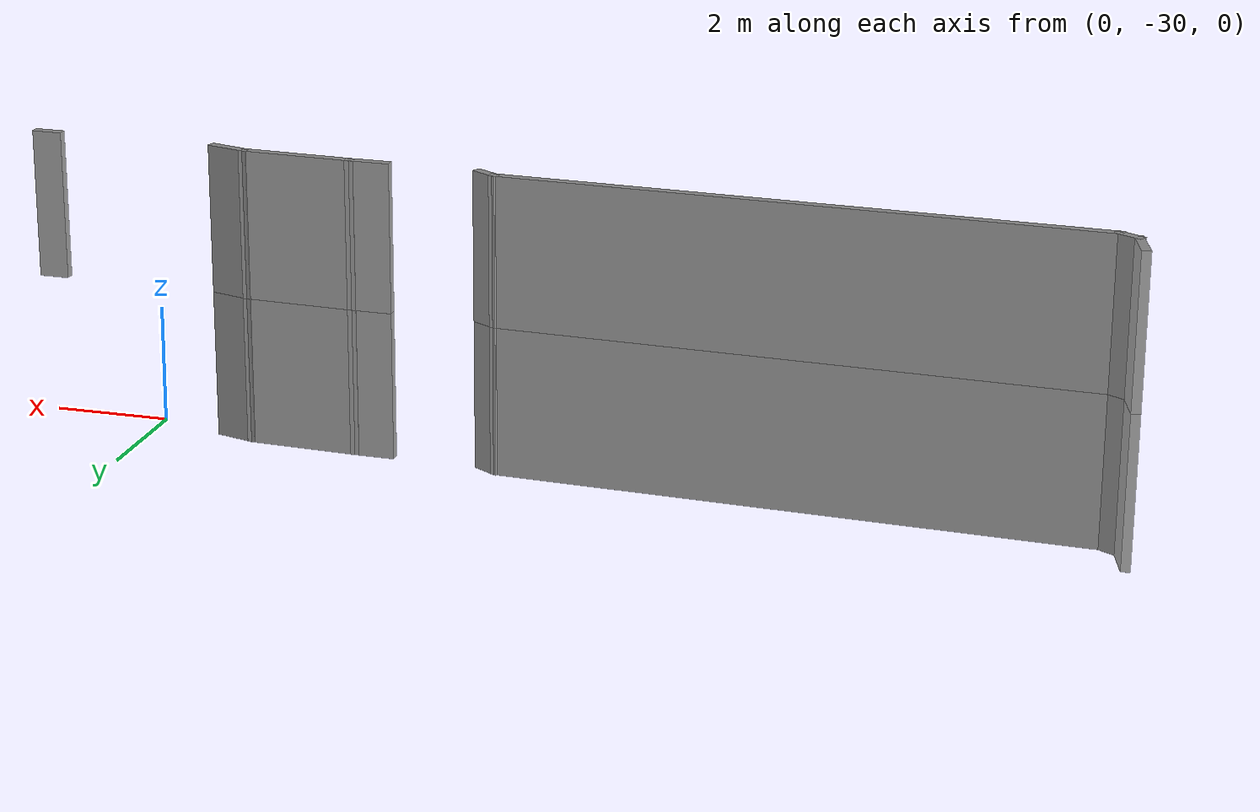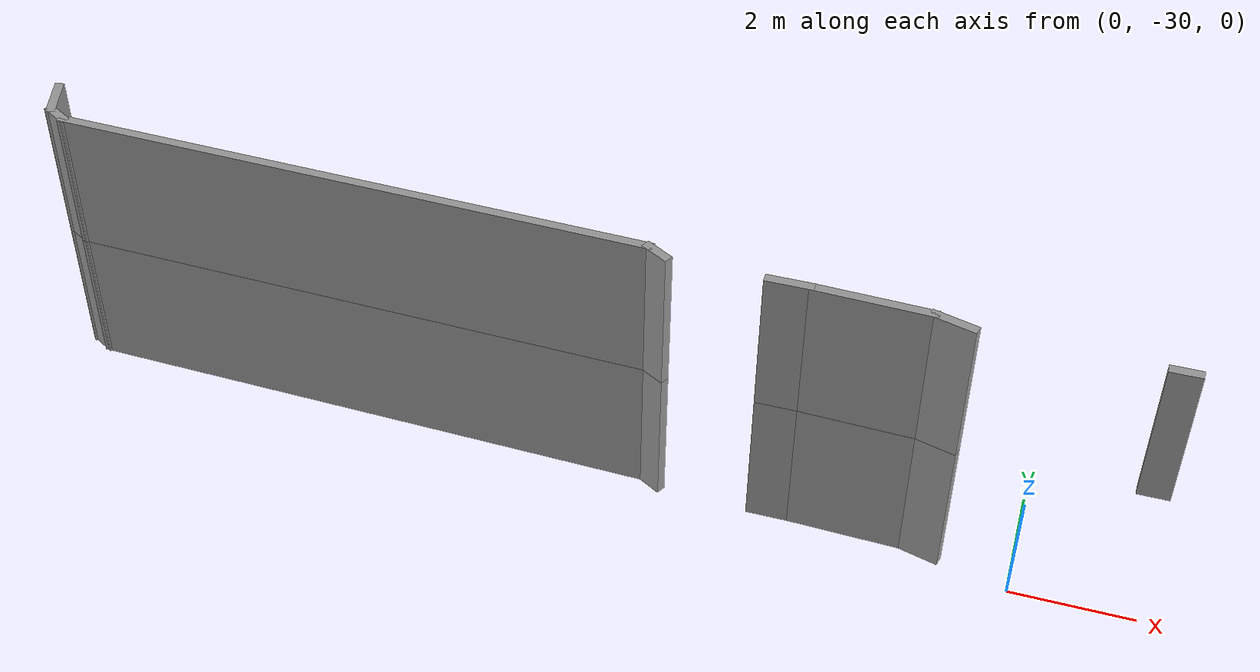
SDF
<sdf version="1.7">
 <model name="EnvDC01">
  <link name="Wall_130">
   <pose>-16.1981 -28.4923 0 0 -0 1.8326</pose>
   <visual name="Wall_130_Visual">
    <pose>0 0 1.25 0 -0 0</pose>
    <geometry><box><size>0.75 0.15 2.5</size></box></geometry>
    <material>
     <script><uri>file://media/materials/scripts/gazebo.material</uri><name>Gazebo/Grey</name></script>
     <ambient>1 1 1 1</ambient>
     <shader type="pixel"/>
    </material>
    <meta><layer>0</layer></meta>
   </visual>
   <collision name="Wall_130_Collision">
    <pose>0 0 1.25 0 -0 0</pose>
    <geometry><box><size>0.75 0.15 2.5</size></box></geometry>
    <surface>
     <friction>
      <ode><mu>1</mu><mu2>1</mu2><fdir1>0 0 0</fdir1><slip1>0</slip1><slip2>0</slip2></ode>
      <torsional>
       <coefficient>1</coefficient>
       <patch_radius>0</patch_radius>
       <surface_radius>0</surface_radius>
       <use_patch_radius>1</use_patch_radius>
       <ode><slip>0</slip></ode>
      </torsional>
     </friction>
     <bounce><restitution_coefficient>0</restitution_coefficient><threshold>1e+06</threshold></bounce>
     <contact>
      <collide_without_contact>0</collide_without_contact>
      <collide_without_contact_bitmask>1</collide_without_contact_bitmask>
      <collide_bitmask>1</collide_bitmask>
      <ode>
       <soft_cfm>0</soft_cfm>
       <soft_erp>0.2</soft_erp>
       <kp>1e+13</kp>
       <kd>1</kd>
       <max_vel>0.01</max_vel>
       <min_depth>0</min_depth>
      </ode>
      <bullet>
       <split_impulse>1</split_impulse>
       <split_impulse_penetration_threshold>-0.01</split_impulse_penetration_threshold>
       <soft_cfm>0</soft_cfm>
       <soft_erp>0.2</soft_erp>
       <kp>1e+13</kp>
       <kd>1</kd>
      </bullet>
     </contact>
    </surface>
   </collision>
  </link>
  <link name="Wall_239">
   <pose>-1.48461 -29.6062 0 0 -0 2.87979</pose>
   <visual name="Wall_239_Visual">
    <pose>0 0 1.25 0 -0 0</pose>
    <geometry><box><size>0.75 0.15 2.5</size></box></geometry>
    <material>
     <script><uri>file://media/materials/scripts/gazebo.material</uri><name>Gazebo/Grey</name></script>
     <ambient>1 1 1 1</ambient>
     <shader type="pixel"/>
    </material>
    <meta><layer>0</layer></meta>
   </visual>
   <collision name="Wall_239_Collision">
    <pose>0 0 1.25 0 -0 0</pose>
    <geometry><box><size>0.75 0.15 2.5</size></box></geometry>
    <surface>
     <friction>
      <ode><mu>1</mu><mu2>1</mu2><fdir1>0 0 0</fdir1><slip1>0</slip1><slip2>0</slip2></ode>
      <torsional>
       <coefficient>1</coefficient>
       <patch_radius>0</patch_radius>
       <surface_radius>0</surface_radius>
       <use_patch_radius>1</use_patch_radius>
       <ode><slip>0</slip></ode>
      </torsional>
     </friction>
     <bounce><restitution_coefficient>0</restitution_coefficient><threshold>1e+06</threshold></bounce>
     <contact>
      <collide_without_contact>0</collide_without_contact>
      <collide_without_contact_bitmask>1</collide_without_contact_bitmask>
      <collide_bitmask>1</collide_bitmask>
      <ode>
       <soft_cfm>0</soft_cfm>
       <soft_erp>0.2</soft_erp>
       <kp>1e+13</kp>
       <kd>1</kd>
       <max_vel>0.01</max_vel>
       <min_depth>0</min_depth>
      </ode>
      <bullet>
       <split_impulse>1</split_impulse>
       <split_impulse_penetration_threshold>-0.01</split_impulse_penetration_threshold>
       <soft_cfm>0</soft_cfm>
       <soft_erp>0.2</soft_erp>
       <kp>1e+13</kp>
       <kd>1</kd>
      </bullet>
     </contact>
    </surface>
   </collision>
  </link>
  <link name="Wall_240">
   <pose>-2.69513 -29.4962 0 0 -0 3.10647</pose>
   <visual name="Wall_240_Visual">
    <pose>0 0 1.25 0 -0 0</pose>
    <geometry><box><size>1.99262 0.15 2.5</size></box></geometry>
    <material>
     <script><uri>file://media/materials/scripts/gazebo.material</uri><name>Gazebo/Grey</name></script>
     <ambient>1 1 1 1</ambient>
     <shader type="pixel"/>
    </material>
    <meta><layer>0</layer></meta>
   </visual>
   <collision name="Wall_240_Collision">
    <pose>0 0 1.25 0 -0 0</pose>
    <geometry><box><size>1.99262 0.15 2.5</size></box></geometry>
    <surface>
     <friction>
      <ode><mu>1</mu><mu2>1</mu2><fdir1>0 0 0</fdir1><slip1>0</slip1><slip2>0</slip2></ode>
      <torsional>
       <coefficient>1</coefficient>
       <patch_radius>0</patch_radius>
       <surface_radius>0</surface_radius>
       <use_patch_radius>1</use_patch_radius>
       <ode><slip>0</slip></ode>
      </torsional>
     </friction>
     <bounce><restitution_coefficient>0</restitution_coefficient><threshold>1e+06</threshold></bounce>
     <contact>
      <collide_without_contact>0</collide_without_contact>
      <collide_without_contact_bitmask>1</collide_without_contact_bitmask>
      <collide_bitmask>1</collide_bitmask>
      <ode>
       <soft_cfm>0</soft_cfm>
       <soft_erp>0.2</soft_erp>
       <kp>1e+13</kp>
       <kd>1</kd>
       <max_vel>0.01</max_vel>
       <min_depth>0</min_depth>
      </ode>
      <bullet>
       <split_impulse>1</split_impulse>
       <split_impulse_penetration_threshold>-0.01</split_impulse_penetration_threshold>
       <soft_cfm>0</soft_cfm>
       <soft_erp>0.2</soft_erp>
       <kp>1e+13</kp>
       <kd>1</kd>
      </bullet>
     </contact>
    </surface>
   </collision>
  </link>
  <link name="Wall_241">
   <pose>-3.91587 -29.4638 0 0 -0 3.14159</pose>
   <visual name="Wall_241_Visual">
    <pose>0 0 1.25 0 -0 0</pose>
    <geometry><box><size>0.75 0.15 2.5</size></box></geometry>
    <material>
     <script><uri>file://media/materials/scripts/gazebo.material</uri><name>Gazebo/Grey</name></script>
     <ambient>1 1 1 1</ambient>
     <shader type="pixel"/>
    </material>
    <meta><layer>0</layer></meta>
   </visual>
   <collision name="Wall_241_Collision">
    <pose>0 0 1.25 0 -0 0</pose>
    <geometry><box><size>0.75 0.15 2.5</size></box></geometry>
    <surface>
     <friction>
      <ode><mu>1</mu><mu2>1</mu2><fdir1>0 0 0</fdir1><slip1>0</slip1><slip2>0</slip2></ode>
      <torsional>
       <coefficient>1</coefficient>
       <patch_radius>0</patch_radius>
       <surface_radius>0</surface_radius>
       <use_patch_radius>1</use_patch_radius>
       <ode><slip>0</slip></ode>
      </torsional>
     </friction>
     <bounce><restitution_coefficient>0</restitution_coefficient><threshold>1e+06</threshold></bounce>
     <contact>
      <collide_without_contact>0</collide_without_contact>
      <collide_without_contact_bitmask>1</collide_without_contact_bitmask>
      <collide_bitmask>1</collide_bitmask>
      <ode>
       <soft_cfm>0</soft_cfm>
       <soft_erp>0.2</soft_erp>
       <kp>1e+13</kp>
       <kd>1</kd>
       <max_vel>0.01</max_vel>
       <min_depth>0</min_depth>
      </ode>
      <bullet>
       <split_impulse>1</split_impulse>
       <split_impulse_penetration_threshold>-0.01</split_impulse_penetration_threshold>
       <soft_cfm>0</soft_cfm>
       <soft_erp>0.2</soft_erp>
       <kp>1e+13</kp>
       <kd>1</kd>
      </bullet>
     </contact>
    </surface>
   </collision>
  </link>
  <link name="Wall_250">
   <pose>-15.9689 -28.8696 0 0 0 -0.523599</pose>
   <visual name="Wall_250_Visual">
    <pose>0 0 1.25 0 -0 0</pose>
    <geometry><box><size>0.5 0.15 2.5</size></box></geometry>
    <material>
     <script><uri>file://media/materials/scripts/gazebo.material</uri><name>Gazebo/Grey</name></script>
     <ambient>1 1 1 1</ambient>
     <shader type="pixel"/>
    </material>
    <meta><layer>0</layer></meta>
   </visual>
   <collision name="Wall_250_Collision">
    <pose>0 0 1.25 0 -0 0</pose>
    <geometry><box><size>0.5 0.15 2.5</size></box></geometry>
    <surface>
     <friction>
      <ode><mu>1</mu><mu2>1</mu2><fdir1>0 0 0</fdir1><slip1>0</slip1><slip2>0</slip2></ode>
      <torsional>
       <coefficient>1</coefficient>
       <patch_radius>0</patch_radius>
       <surface_radius>0</surface_radius>
       <use_patch_radius>1</use_patch_radius>
       <ode><slip>0</slip></ode>
      </torsional>
     </friction>
     <bounce><restitution_coefficient>0</restitution_coefficient><threshold>1e+06</threshold></bounce>
     <contact>
      <collide_without_contact>0</collide_without_contact>
      <collide_without_contact_bitmask>1</collide_without_contact_bitmask>
      <collide_bitmask>1</collide_bitmask>
      <ode>
       <soft_cfm>0</soft_cfm>
       <soft_erp>0.2</soft_erp>
       <kp>1e+13</kp>
       <kd>1</kd>
       <max_vel>0.01</max_vel>
       <min_depth>0</min_depth>
      </ode>
      <bullet>
       <split_impulse>1</split_impulse>
       <split_impulse_penetration_threshold>-0.01</split_impulse_penetration_threshold>
       <soft_cfm>0</soft_cfm>
       <soft_erp>0.2</soft_erp>
       <kp>1e+13</kp>
       <kd>1</kd>
      </bullet>
     </contact>
    </surface>
   </collision>
  </link>
  <link name="Wall_251">
   <pose>-10.9552 -29.1127 0 0 0 -0.032002</pose>
   <visual name="Wall_251_Visual">
    <pose>0 0 1.25 0 -0 0</pose>
    <geometry><box><size>9.87927 0.15 2.5</size></box></geometry>
    <material>
     <script><uri>file://media/materials/scripts/gazebo.material</uri><name>Gazebo/Grey</name></script>
     <ambient>1 1 1 1</ambient>
     <shader type="pixel"/>
    </material>
    <meta><layer>0</layer></meta>
   </visual>
   <collision name="Wall_251_Collision">
    <pose>0 0 1.25 0 -0 0</pose>
    <geometry><box><size>9.87927 0.15 2.5</size></box></geometry>
    <surface>
     <friction>
      <ode><mu>1</mu><mu2>1</mu2><fdir1>0 0 0</fdir1><slip1>0</slip1><slip2>0</slip2></ode>
      <torsional>
       <coefficient>1</coefficient>
       <patch_radius>0</patch_radius>
       <surface_radius>0</surface_radius>
       <use_patch_radius>1</use_patch_radius>
       <ode><slip>0</slip></ode>
      </torsional>
     </friction>
     <bounce><restitution_coefficient>0</restitution_coefficient><threshold>1e+06</threshold></bounce>
     <contact>
      <collide_without_contact>0</collide_without_contact>
      <collide_without_contact_bitmask>1</collide_without_contact_bitmask>
      <collide_bitmask>1</collide_bitmask>
      <ode>
       <soft_cfm>0</soft_cfm>
       <soft_erp>0.2</soft_erp>
       <kp>1e+13</kp>
       <kd>1</kd>
       <max_vel>0.01</max_vel>
       <min_depth>0</min_depth>
      </ode>
      <bullet>
       <split_impulse>1</split_impulse>
       <split_impulse_penetration_threshold>-0.01</split_impulse_penetration_threshold>
       <soft_cfm>0</soft_cfm>
       <soft_erp>0.2</soft_erp>
       <kp>1e+13</kp>
       <kd>1</kd>
      </bullet>
     </contact>
    </surface>
   </collision>
  </link>
  <link name="Wall_252">
   <pose>-5.94154 -29.3559 0 0 0 -0.523599</pose>
   <visual name="Wall_252_Visual">
    <pose>0 0 1.25 0 -0 0</pose>
    <geometry><box><size>0.5 0.15 2.5</size></box></geometry>
    <material>
     <script><uri>file://media/materials/scripts/gazebo.material</uri><name>Gazebo/Grey</name></script>
     <ambient>1 1 1 1</ambient>
     <shader type="pixel"/>
    </material>
    <meta><layer>0</layer></meta>
   </visual>
   <collision name="Wall_252_Collision">
    <pose>0 0 1.25 0 -0 0</pose>
    <geometry><box><size>0.5 0.15 2.5</size></box></geometry>
    <surface>
     <friction>
      <ode><mu>1</mu><mu2>1</mu2><fdir1>0 0 0</fdir1><slip1>0</slip1><slip2>0</slip2></ode>
      <torsional>
       <coefficient>1</coefficient>
       <patch_radius>0</patch_radius>
       <surface_radius>0</surface_radius>
       <use_patch_radius>1</use_patch_radius>
       <ode><slip>0</slip></ode>
      </torsional>
     </friction>
     <bounce><restitution_coefficient>0</restitution_coefficient><threshold>1e+06</threshold></bounce>
     <contact>
      <collide_without_contact>0</collide_without_contact>
      <collide_without_contact_bitmask>1</collide_without_contact_bitmask>
      <collide_bitmask>1</collide_bitmask>
      <ode>
       <soft_cfm>0</soft_cfm>
       <soft_erp>0.2</soft_erp>
       <kp>1e+13</kp>
       <kd>1</kd>
       <max_vel>0.01</max_vel>
       <min_depth>0</min_depth>
      </ode>
      <bullet>
       <split_impulse>1</split_impulse>
       <split_impulse_penetration_threshold>-0.01</split_impulse_penetration_threshold>
       <soft_cfm>0</soft_cfm>
       <soft_erp>0.2</soft_erp>
       <kp>1e+13</kp>
       <kd>1</kd>
      </bullet>
     </contact>
    </surface>
   </collision>
  </link>
  <link name="Wall_328">
   <pose>-16.1981 -28.4923 2.5 0 -0 1.8326</pose>
   <visual name="Wall_328_Visual">
    <pose>0 0 1.25 0 -0 0</pose>
    <geometry><box><size>0.75 0.15 2.5</size></box></geometry>
    <material>
     <script><uri>file://media/materials/scripts/gazebo.material</uri><name>Gazebo/Grey</name></script>
     <ambient>1 1 1 1</ambient>
     <shader type="pixel"/>
    </material>
    <meta><layer>1</layer></meta>
   </visual>
   <collision name="Wall_328_Collision">
    <pose>0 0 1.25 0 -0 0</pose>
    <geometry><box><size>0.75 0.15 2.5</size></box></geometry>
    <surface>
     <friction>
      <ode><mu>1</mu><mu2>1</mu2><fdir1>0 0 0</fdir1><slip1>0</slip1><slip2>0</slip2></ode>
      <torsional>
       <coefficient>1</coefficient>
       <patch_radius>0</patch_radius>
       <surface_radius>0</surface_radius>
       <use_patch_radius>1</use_patch_radius>
       <ode><slip>0</slip></ode>
      </torsional>
     </friction>
     <bounce><restitution_coefficient>0</restitution_coefficient><threshold>1e+06</threshold></bounce>
     <contact>
      <collide_without_contact>0</collide_without_contact>
      <collide_without_contact_bitmask>1</collide_without_contact_bitmask>
      <collide_bitmask>1</collide_bitmask>
      <ode>
       <soft_cfm>0</soft_cfm>
       <soft_erp>0.2</soft_erp>
       <kp>1e+13</kp>
       <kd>1</kd>
       <max_vel>0.01</max_vel>
       <min_depth>0</min_depth>
      </ode>
      <bullet>
       <split_impulse>1</split_impulse>
       <split_impulse_penetration_threshold>-0.01</split_impulse_penetration_threshold>
       <soft_cfm>0</soft_cfm>
       <soft_erp>0.2</soft_erp>
       <kp>1e+13</kp>
       <kd>1</kd>
      </bullet>
     </contact>
    </surface>
   </collision>
  </link>
  <link name="Wall_395">
   <pose>1.77299 -29.7091 2.5 0 -0 3.14159</pose>
   <visual name="Wall_395_Visual">
    <pose>0 0 1.25 0 -0 0</pose>
    <geometry><box><size>0.5 0.15 2.5</size></box></geometry>
    <material>
     <script><uri>file://media/materials/scripts/gazebo.material</uri><name>Gazebo/Grey</name></script>
     <ambient>1 1 1 1</ambient>
     <shader type="pixel"/>
    </material>
    <meta><layer>1</layer></meta>
   </visual>
   <collision name="Wall_395_Collision">
    <pose>0 0 1.25 0 -0 0</pose>
    <geometry><box><size>0.5 0.15 2.5</size></box></geometry>
    <surface>
     <friction>
      <ode><mu>1</mu><mu2>1</mu2><fdir1>0 0 0</fdir1><slip1>0</slip1><slip2>0</slip2></ode>
      <torsional>
       <coefficient>1</coefficient>
       <patch_radius>0</patch_radius>
       <surface_radius>0</surface_radius>
       <use_patch_radius>1</use_patch_radius>
       <ode><slip>0</slip></ode>
      </torsional>
     </friction>
     <bounce><restitution_coefficient>0</restitution_coefficient><threshold>1e+06</threshold></bounce>
     <contact>
      <collide_without_contact>0</collide_without_contact>
      <collide_without_contact_bitmask>1</collide_without_contact_bitmask>
      <collide_bitmask>1</collide_bitmask>
      <ode>
       <soft_cfm>0</soft_cfm>
       <soft_erp>0.2</soft_erp>
       <kp>1e+13</kp>
       <kd>1</kd>
       <max_vel>0.01</max_vel>
       <min_depth>0</min_depth>
      </ode>
      <bullet>
       <split_impulse>1</split_impulse>
       <split_impulse_penetration_threshold>-0.01</split_impulse_penetration_threshold>
       <soft_cfm>0</soft_cfm>
       <soft_erp>0.2</soft_erp>
       <kp>1e+13</kp>
       <kd>1</kd>
      </bullet>
     </contact>
    </surface>
   </collision>
  </link>
  <link name="Wall_404">
   <pose>-1.48461 -29.6062 2.5 0 -0 2.87979</pose>
   <visual name="Wall_404_Visual">
    <pose>0 0 1.25 0 -0 0</pose>
    <geometry><box><size>0.75 0.15 2.5</size></box></geometry>
    <material>
     <script><uri>file://media/materials/scripts/gazebo.material</uri><name>Gazebo/Grey</name></script>
     <ambient>1 1 1 1</ambient>
     <shader type="pixel"/>
    </material>
    <meta><layer>1</layer></meta>
   </visual>
   <collision name="Wall_404_Collision">
    <pose>0 0 1.25 0 -0 0</pose>
    <geometry><box><size>0.75 0.15 2.5</size></box></geometry>
    <surface>
     <friction>
      <ode><mu>1</mu><mu2>1</mu2><fdir1>0 0 0</fdir1><slip1>0</slip1><slip2>0</slip2></ode>
      <torsional>
       <coefficient>1</coefficient>
       <patch_radius>0</patch_radius>
       <surface_radius>0</surface_radius>
       <use_patch_radius>1</use_patch_radius>
       <ode><slip>0</slip></ode>
      </torsional>
     </friction>
     <bounce><restitution_coefficient>0</restitution_coefficient><threshold>1e+06</threshold></bounce>
     <contact>
      <collide_without_contact>0</collide_without_contact>
      <collide_without_contact_bitmask>1</collide_without_contact_bitmask>
      <collide_bitmask>1</collide_bitmask>
      <ode>
       <soft_cfm>0</soft_cfm>
       <soft_erp>0.2</soft_erp>
       <kp>1e+13</kp>
       <kd>1</kd>
       <max_vel>0.01</max_vel>
       <min_depth>0</min_depth>
      </ode>
      <bullet>
       <split_impulse>1</split_impulse>
       <split_impulse_penetration_threshold>-0.01</split_impulse_penetration_threshold>
       <soft_cfm>0</soft_cfm>
       <soft_erp>0.2</soft_erp>
       <kp>1e+13</kp>
       <kd>1</kd>
      </bullet>
     </contact>
    </surface>
   </collision>
  </link>
  <link name="Wall_405">
   <pose>-2.69512 -29.4962 2.5 0 -0 3.10647</pose>
   <visual name="Wall_405_Visual">
    <pose>0 0 1.25 0 -0 0</pose>
    <geometry><box><size>1.99262 0.15 2.5</size></box></geometry>
    <material>
     <script><uri>file://media/materials/scripts/gazebo.material</uri><name>Gazebo/Grey</name></script>
     <ambient>1 1 1 1</ambient>
     <shader type="pixel"/>
    </material>
    <meta><layer>1</layer></meta>
   </visual>
   <collision name="Wall_405_Collision">
    <pose>0 0 1.25 0 -0 0</pose>
    <geometry><box><size>1.99262 0.15 2.5</size></box></geometry>
    <surface>
     <friction>
      <ode><mu>1</mu><mu2>1</mu2><fdir1>0 0 0</fdir1><slip1>0</slip1><slip2>0</slip2></ode>
      <torsional>
       <coefficient>1</coefficient>
       <patch_radius>0</patch_radius>
       <surface_radius>0</surface_radius>
       <use_patch_radius>1</use_patch_radius>
       <ode><slip>0</slip></ode>
      </torsional>
     </friction>
     <bounce><restitution_coefficient>0</restitution_coefficient><threshold>1e+06</threshold></bounce>
     <contact>
      <collide_without_contact>0</collide_without_contact>
      <collide_without_contact_bitmask>1</collide_without_contact_bitmask>
      <collide_bitmask>1</collide_bitmask>
      <ode>
       <soft_cfm>0</soft_cfm>
       <soft_erp>0.2</soft_erp>
       <kp>1e+13</kp>
       <kd>1</kd>
       <max_vel>0.01</max_vel>
       <min_depth>0</min_depth>
      </ode>
      <bullet>
       <split_impulse>1</split_impulse>
       <split_impulse_penetration_threshold>-0.01</split_impulse_penetration_threshold>
       <soft_cfm>0</soft_cfm>
       <soft_erp>0.2</soft_erp>
       <kp>1e+13</kp>
       <kd>1</kd>
      </bullet>
     </contact>
    </surface>
   </collision>
  </link>
  <link name="Wall_406">
   <pose>-3.91587 -29.4638 2.5 0 -0 3.14159</pose>
   <visual name="Wall_406_Visual">
    <pose>0 0 1.25 0 -0 0</pose>
    <geometry><box><size>0.75 0.15 2.5</size></box></geometry>
    <material>
     <script><uri>file://media/materials/scripts/gazebo.material</uri><name>Gazebo/Grey</name></script>
     <ambient>1 1 1 1</ambient>
     <shader type="pixel"/>
    </material>
    <meta><layer>1</layer></meta>
   </visual>
   <collision name="Wall_406_Collision">
    <pose>0 0 1.25 0 -0 0</pose>
    <geometry><box><size>0.75 0.15 2.5</size></box></geometry>
    <surface>
     <friction>
      <ode><mu>1</mu><mu2>1</mu2><fdir1>0 0 0</fdir1><slip1>0</slip1><slip2>0</slip2></ode>
      <torsional>
       <coefficient>1</coefficient>
       <patch_radius>0</patch_radius>
       <surface_radius>0</surface_radius>
       <use_patch_radius>1</use_patch_radius>
       <ode><slip>0</slip></ode>
      </torsional>
     </friction>
     <bounce><restitution_coefficient>0</restitution_coefficient><threshold>1e+06</threshold></bounce>
     <contact>
      <collide_without_contact>0</collide_without_contact>
      <collide_without_contact_bitmask>1</collide_without_contact_bitmask>
      <collide_bitmask>1</collide_bitmask>
      <ode>
       <soft_cfm>0</soft_cfm>
       <soft_erp>0.2</soft_erp>
       <kp>1e+13</kp>
       <kd>1</kd>
       <max_vel>0.01</max_vel>
       <min_depth>0</min_depth>
      </ode>
      <bullet>
       <split_impulse>1</split_impulse>
       <split_impulse_penetration_threshold>-0.01</split_impulse_penetration_threshold>
       <soft_cfm>0</soft_cfm>
       <soft_erp>0.2</soft_erp>
       <kp>1e+13</kp>
       <kd>1</kd>
      </bullet>
     </contact>
    </surface>
   </collision>
  </link>
  <link name="Wall_412">
   <pose>-15.9689 -28.8696 2.5 0 0 -0.523599</pose>
   <visual name="Wall_412_Visual">
    <pose>0 0 1.25 0 -0 0</pose>
    <geometry><box><size>0.5 0.15 2.5</size></box></geometry>
    <material>
     <script><uri>file://media/materials/scripts/gazebo.material</uri><name>Gazebo/Grey</name></script>
     <ambient>1 1 1 1</ambient>
     <shader type="pixel"/>
    </material>
    <meta><layer>1</layer></meta>
   </visual>
   <collision name="Wall_412_Collision">
    <pose>0 0 1.25 0 -0 0</pose>
    <geometry><box><size>0.5 0.15 2.5</size></box></geometry>
    <surface>
     <friction>
      <ode><mu>1</mu><mu2>1</mu2><fdir1>0 0 0</fdir1><slip1>0</slip1><slip2>0</slip2></ode>
      <torsional>
       <coefficient>1</coefficient>
       <patch_radius>0</patch_radius>
       <surface_radius>0</surface_radius>
       <use_patch_radius>1</use_patch_radius>
       <ode><slip>0</slip></ode>
      </torsional>
     </friction>
     <bounce><restitution_coefficient>0</restitution_coefficient><threshold>1e+06</threshold></bounce>
     <contact>
      <collide_without_contact>0</collide_without_contact>
      <collide_without_contact_bitmask>1</collide_without_contact_bitmask>
      <collide_bitmask>1</collide_bitmask>
      <ode>
       <soft_cfm>0</soft_cfm>
       <soft_erp>0.2</soft_erp>
       <kp>1e+13</kp>
       <kd>1</kd>
       <max_vel>0.01</max_vel>
       <min_depth>0</min_depth>
      </ode>
      <bullet>
       <split_impulse>1</split_impulse>
       <split_impulse_penetration_threshold>-0.01</split_impulse_penetration_threshold>
       <soft_cfm>0</soft_cfm>
       <soft_erp>0.2</soft_erp>
       <kp>1e+13</kp>
       <kd>1</kd>
      </bullet>
     </contact>
    </surface>
   </collision>
  </link>
  <link name="Wall_413">
   <pose>-10.9552 -29.1127 2.5 0 0 -0.032002</pose>
   <visual name="Wall_413_Visual">
    <pose>0 0 1.25 0 -0 0</pose>
    <geometry><box><size>9.87927 0.15 2.5</size></box></geometry>
    <material>
     <script><uri>file://media/materials/scripts/gazebo.material</uri><name>Gazebo/Grey</name></script>
     <ambient>1 1 1 1</ambient>
     <shader type="pixel"/>
    </material>
    <meta><layer>1</layer></meta>
   </visual>
   <collision name="Wall_413_Collision">
    <pose>0 0 1.25 0 -0 0</pose>
    <geometry><box><size>9.87927 0.15 2.5</size></box></geometry>
    <surface>
     <friction>
      <ode><mu>1</mu><mu2>1</mu2><fdir1>0 0 0</fdir1><slip1>0</slip1><slip2>0</slip2></ode>
      <torsional>
       <coefficient>1</coefficient>
       <patch_radius>0</patch_radius>
       <surface_radius>0</surface_radius>
       <use_patch_radius>1</use_patch_radius>
       <ode><slip>0</slip></ode>
      </torsional>
     </friction>
     <bounce><restitution_coefficient>0</restitution_coefficient><threshold>1e+06</threshold></bounce>
     <contact>
      <collide_without_contact>0</collide_without_contact>
      <collide_without_contact_bitmask>1</collide_without_contact_bitmask>
      <collide_bitmask>1</collide_bitmask>
      <ode>
       <soft_cfm>0</soft_cfm>
       <soft_erp>0.2</soft_erp>
       <kp>1e+13</kp>
       <kd>1</kd>
       <max_vel>0.01</max_vel>
       <min_depth>0</min_depth>
      </ode>
      <bullet>
       <split_impulse>1</split_impulse>
       <split_impulse_penetration_threshold>-0.01</split_impulse_penetration_threshold>
       <soft_cfm>0</soft_cfm>
       <soft_erp>0.2</soft_erp>
       <kp>1e+13</kp>
       <kd>1</kd>
      </bullet>
     </contact>
    </surface>
   </collision>
  </link>
  <link name="Wall_414">
   <pose>-5.94154 -29.3559 2.5 0 0 -0.523599</pose>
   <visual name="Wall_414_Visual">
    <pose>0 0 1.25 0 -0 0</pose>
    <geometry><box><size>0.5 0.15 2.5</size></box></geometry>
    <material>
     <script><uri>file://media/materials/scripts/gazebo.material</uri><name>Gazebo/Grey</name></script>
     <ambient>1 1 1 1</ambient>
     <shader type="pixel"/>
    </material>
    <meta><layer>1</layer></meta>
   </visual>
   <collision name="Wall_414_Collision">
    <pose>0 0 1.25 0 -0 0</pose>
    <geometry><box><size>0.5 0.15 2.5</size></box></geometry>
    <surface>
     <friction>
      <ode><mu>1</mu><mu2>1</mu2><fdir1>0 0 0</fdir1><slip1>0</slip1><slip2>0</slip2></ode>
      <torsional>
       <coefficient>1</coefficient>
       <patch_radius>0</patch_radius>
       <surface_radius>0</surface_radius>
       <use_patch_radius>1</use_patch_radius>
       <ode><slip>0</slip></ode>
      </torsional>
     </friction>
     <bounce><restitution_coefficient>0</restitution_coefficient><threshold>1e+06</threshold></bounce>
     <contact>
      <collide_without_contact>0</collide_without_contact>
      <collide_without_contact_bitmask>1</collide_without_contact_bitmask>
      <collide_bitmask>1</collide_bitmask>
      <ode>
       <soft_cfm>0</soft_cfm>
       <soft_erp>0.2</soft_erp>
       <kp>1e+13</kp>
       <kd>1</kd>
       <max_vel>0.01</max_vel>
       <min_depth>0</min_depth>
      </ode>
      <bullet>
       <split_impulse>1</split_impulse>
       <split_impulse_penetration_threshold>-0.01</split_impulse_penetration_threshold>
       <soft_cfm>0</soft_cfm>
       <soft_erp>0.2</soft_erp>
       <kp>1e+13</kp>
       <kd>1</kd>
      </bullet>
     </contact>
    </surface>
   </collision>
  </link>
  <static>1</static>
 </model>
</sdf>
